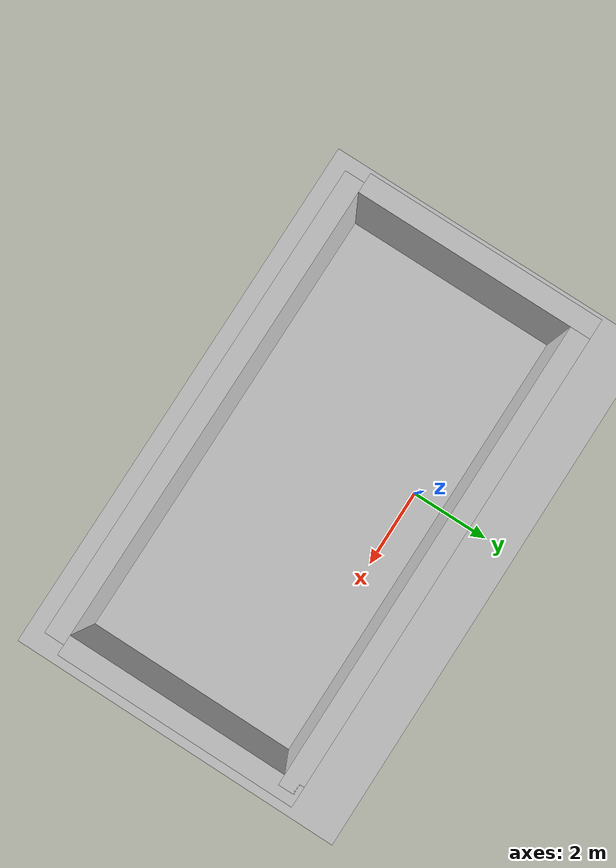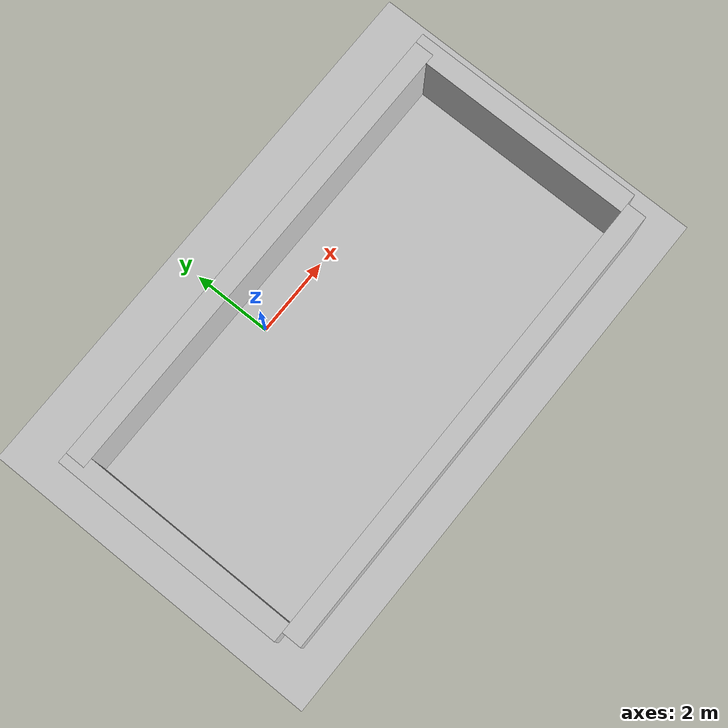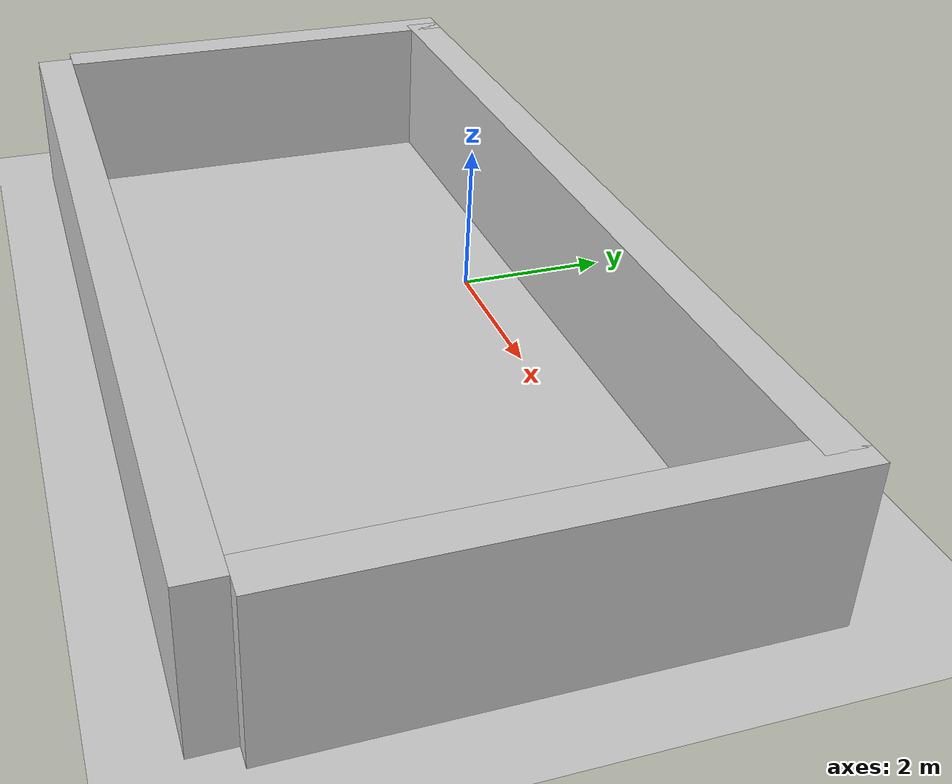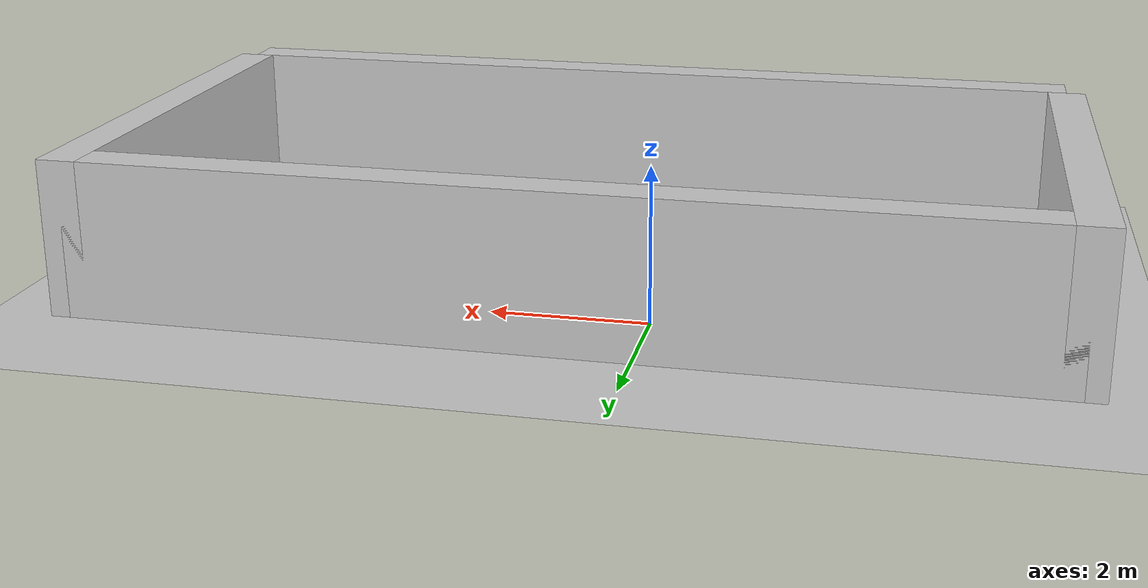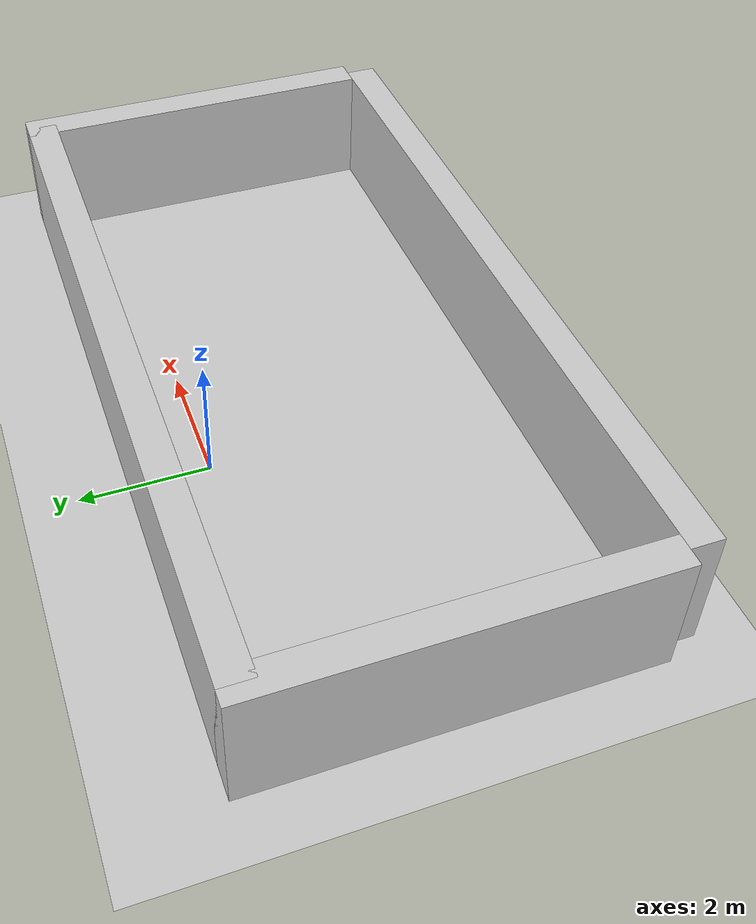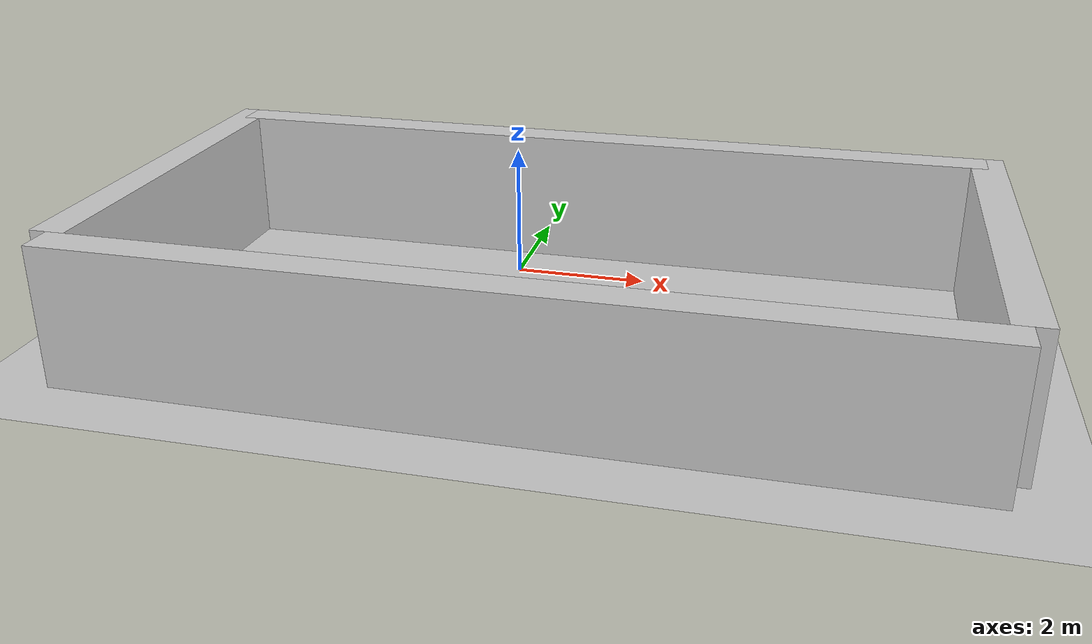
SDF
<?xml version="1.0" ?>
<sdf version="1.5">
   <plugin
  filename="ignition-gazebo-particle-emitter2-system"
  name="ignition::gazebo::systems::ParticleEmitter2">
  </plugin>
  <plugin
      filename="ignition-gazebo-sensors-system"
      name="ignition::gazebo::systems::Sensors">
      <render_engine>ogre2</render_engine>
    </plugin>
  <world name="upo_basement">
    <plugin
      filename="ignition-gazebo-sensors-system"
      name="ignition::gazebo::systems::Sensors">
      <render_engine>ogre2</render_engine>
    </plugin>

  <physics name='4ms' type='ignored'>
            <max_step_size>0.004</max_step_size>
            <real_time_factor>1.0</real_time_factor>
    </physics>
    <plugin name='ignition::gazebo::systems::Physics' filename='ignition-gazebo-physics-system'/>
    <plugin name='ignition::gazebo::systems::UserCommands' filename='ignition-gazebo-user-commands-system'/>
    <plugin name='ignition::gazebo::systems::SceneBroadcaster' filename='ignition-gazebo-scene-broadcaster-system'/>
    <gui>
        <!-- World control -->
      <plugin filename="WorldControl" name="World control">
        <ignition-gui>
          <title>World control</title>
          <property type="bool" key="showTitleBar">false</property>
          <property type="bool" key="resizable">false</property>
          <property type="double" key="height">72</property>
          <property type="double" key="width">121</property>
          <property type="double" key="z">1</property>

          <property type="string" key="state">floating</property>
          <anchors target="3D View">
            <line own="left" target="left"/>
            <line own="bottom" target="bottom"/>
          </anchors>
        </ignition-gui>

        <play_pause>true</play_pause>
        <step>true</step>
        <start_paused>true</start_paused>

      </plugin>
        <plugin name='3D View' filename='GzScene3D'>
                <ignition-gui>
                    <title>3D View</title>
                    <property type='bool' key='showTitleBar'>0</property>
                    <property type='string' key='state'>docked</property>
                </ignition-gui>
                <engine>ogre2</engine>
                <scene>scene</scene>
                <ambient_light>0.4 0.4 0.4</ambient_light>
                <background_color>0.8 0.8 0.8</background_color>
                <camera_pose>-6 0 6 0 0.5 0</camera_pose>
        </plugin>
        <plugin name='World stats' filename='WorldStats'>
                <ignition-gui>
                    <title>World stats</title>
                    <property type='bool' key='showTitleBar'>0</property>
                    <property type='bool' key='resizable'>0</property>
                    <property type='double' key='height'>110</property>
                    <property type='double' key='width'>290</property>
                    <property type='double' key='z'>1</property>
                    <property type='string' key='state'>floating</property>
                    <anchors target='3D View'>
                        <line own='right' target='right'/>
                        <line own='bottom' target='bottom'/>
                    </anchors>
                </ignition-gui>
                <sim_time>1</sim_time>
                <real_time>1</real_time>
                <real_time_factor>1</real_time_factor>
                <iterations>1</iterations>
            </plugin>
        <plugin filename="KeyPublisher" name="Key publisher">
            <anchors target="3D View">
                        <line own="right" target="right"/>
                        <line own="top" target="top"/>
                    </anchors>
            <ignition-gui>

                <property key="resizable" type="bool">false</property>
                <property key="width" type="double">5</property>
                <property key="height" type="double">5</property>
                <property key="state" type="string">floating</property>
                <property key="showTitleBar" type="bool">false</property>
            </ignition-gui>
        </plugin>
    </gui>

    <include>
      <uri>fog_generator</uri>
      <name>fog</name>
      <pose>2 -2 -1 0 0 0</pose>
    </include>

    <!-- Shape of the UPO basement-->
    <model name="left_wall">
      <pose>1.0 1.0 1.0 0 0 0</pose>
      <link name="link">
        <collision name="collision">
          <geometry>
            <box>
              <size>12 0.5 2.0</size>
            </box>
          </geometry>
        </collision>

        <visual name="visual">
          <geometry>
            <box>
              <size>12 0.5 2.0</size>
            </box>
          </geometry>
          <material>
            <ambient>0.8 0.8 0.8 1</ambient>
            <diffuse>0.8 0.8 0.8 1</diffuse>
            <specular>0.8 0.8 0.8 1</specular>
          </material>
        </visual>
      </link>
      <static>true</static>
    </model>

    <model name="right_wall">
      <pose>1.0 -5.0 1.0 0 0 0</pose>
      <link name="link">
        <collision name="collision">
          <geometry>
            <box>
              <size>12 0.5 2.0</size>
            </box>
          </geometry>
        </collision>

        <visual name="visual">
          <geometry>
            <box>
              <size>12 0.5 2.0</size>
            </box>
          </geometry>
          <material>
            <ambient>0.8 0.8 0.8 1</ambient>
            <diffuse>0.8 0.8 0.8 1</diffuse>
            <specular>0.8 0.8 0.8 1</specular>
          </material>
        </visual>
      </link>
    </model>

    <model name="front_wall">
      <pose>7.0 -1.75 1.0 0 0 0</pose>
      <link name="link">
        <collision name="collision">
          <geometry>
            <box>
              <size>0.5 6 2.0</size>
            </box>
          </geometry>
        </collision>

        <visual name="visual">
          <geometry>
            <box>
              <size>0.5 6 2.0</size>
            </box>
          </geometry>
          <material>
            <ambient>0.8 0.8 0.8 1</ambient>
            <diffuse>0.8 0.8 0.8 1</diffuse>
            <specular>0.8 0.8 0.8 1</specular>
          </material>
        </visual>
      </link>
      <static>true</static>
    </model>

    <model name="rear_wall">
      <pose>-5.0 -1.75 1.0 0 0 0</pose>
      <link name="link">
        <collision name="collision">
          <geometry>
            <box>
              <size>0.5 6 2.0</size>
            </box>
          </geometry>
        </collision>

        <visual name="visual">
          <geometry>
            <box>
              <size>0.5 6 2.0</size>
            </box>
          </geometry>
          <material>
            <ambient>0.8 0.8 0.8 1</ambient>
            <diffuse>0.8 0.8 0.8 1</diffuse>
            <specular>0.8 0.8 0.8 1</specular>
          </material>
        </visual>
      </link>
      <static>true</static>
    </model>

    <light name='sun' type='directional'>
      <cast_shadows>1</cast_shadows>
      <pose frame=''>0 0 10 0 -0 0</pose>
      <diffuse>0.8 0.8 0.8 1</diffuse>
      <specular>0.2 0.2 0.2 1</specular>
      <attenuation>
        <range>1000</range>
        <constant>0.9</constant>
        <linear>0.01</linear>
        <quadratic>0.001</quadratic>
      </attenuation>
      <direction>-0.5 0.1 -0.9</direction>
    </light>

    <model name="ground_plane">
      <static>true</static>
      <link name="link">
        <collision name="collision">
          <geometry>
            <plane>
              <normal>0 0 1</normal>
              <size>100 100</size>
            </plane>
          </geometry>
        </collision>
        <visual name="visual">
          <geometry>
            <plane>
              <normal>0 0 1</normal>
              <size>100 100</size>
            </plane>
          </geometry>
          <material>
            <ambient>0.8 0.8 0.8 1</ambient>
            <diffuse>0.8 0.8 0.8 1</diffuse>
            <specular>0.8 0.8 0.8 1</specular>
          </material>
        </visual>
      </link>
      <static>true</static>
    </model>

    <gravity>0 0 -9.8</gravity>

    <magnetic_field>6e-06 2.3e-05 -4.2e-05</magnetic_field>

    <atmosphere type='adiabatic'/>

    <light name='user_spot_light_0' type='spot'>
      <diffuse>0.5 0.5 0.5 1</diffuse>
      <specular>0.1 0.1 0.1 1</specular>
      <direction>0 0 -1</direction>
      <attenuation>
        <range>20</range>
        <constant>0.5</constant>
        <linear>0.01</linear>
        <quadratic>0.001</quadratic>
      </attenuation>
      <cast_shadows>0</cast_shadows>
      <spot>
        <inner_angle>0.6</inner_angle>
        <outer_angle>1</outer_angle>
        <falloff>1</falloff>
      </spot>
    </light>

  </world>
</sdf>

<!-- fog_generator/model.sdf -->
<sdf version="1.6">
  <model name="fog_generator">
    <pose>0 0 0 0 -1.5707 0</pose>
    <static>true</static>
    <link name="fog_link">
      <particle_emitter name="emitter" type="box">
        <particle_scatter_ratio>0.4</particle_scatter_ratio>
        <emitting>true</emitting>
        <size>5 5 0</size>
        <particle_size>0.0001 0.0001 0.0001</particle_size>
        <lifetime>15</lifetime>
        <min_velocity>0.1</min_velocity>
        <max_velocity>0.2</max_velocity>
        <scale_rate>0.5</scale_rate>
        <rate>5</rate>
        <material>
          <diffuse>0.7 0.7 0.7</diffuse>
          <specular>1.0 1.0 1.0</specular>
          <pbr>
            <metal>
              <albedo_map>materials/textures/fog.png</albedo_map>
            </metal>
          </pbr>
        </material>
        <color_range_image>materials/textures/fogcolors.png</color_range_image>
      </particle_emitter>
    </link>
  </model>
</sdf>
